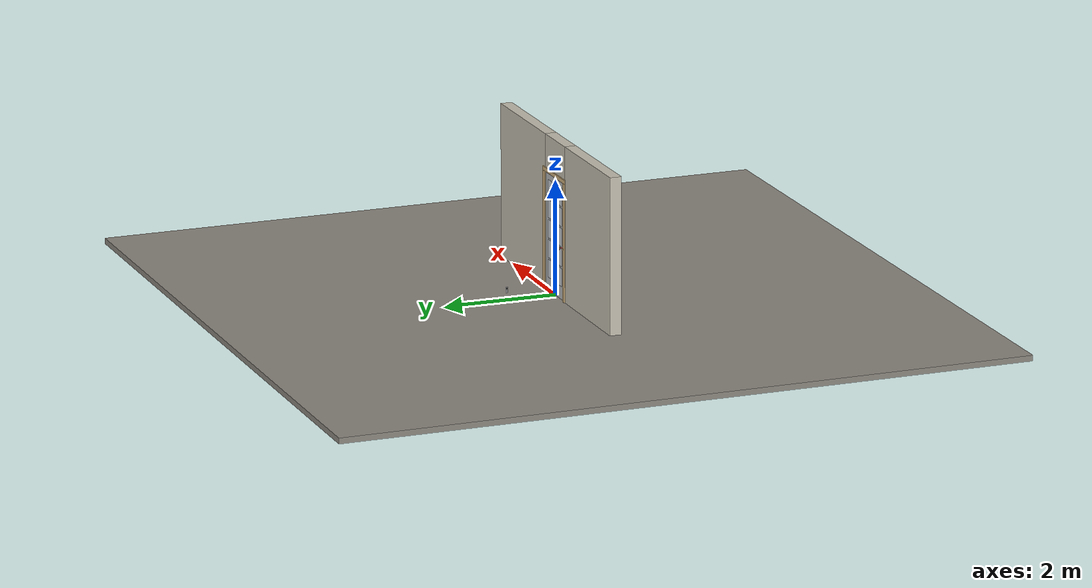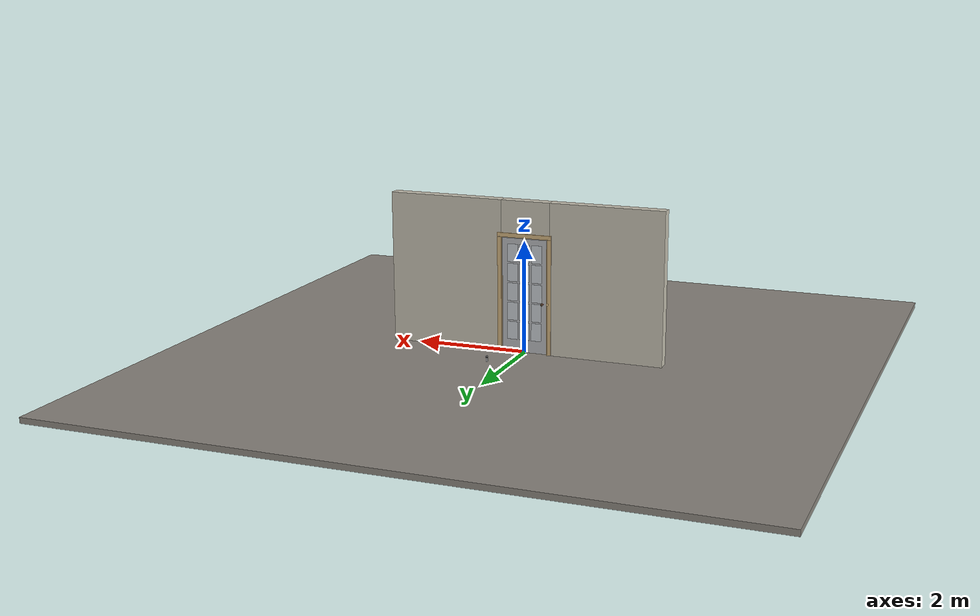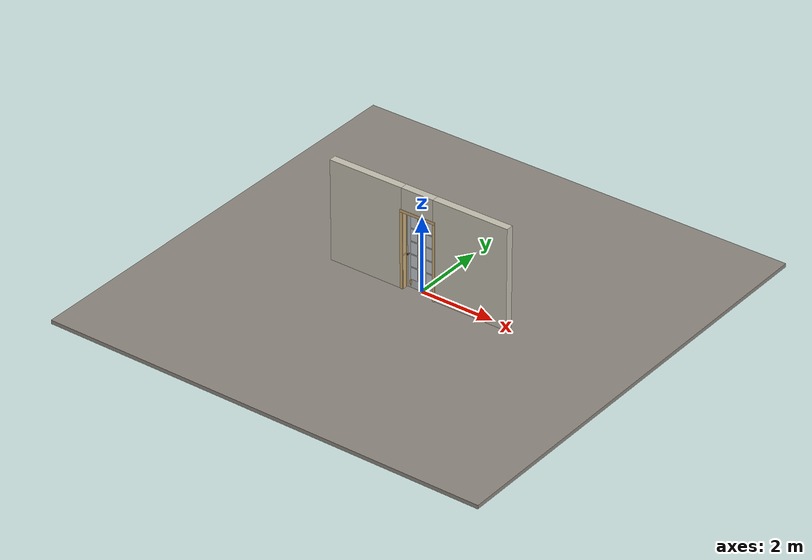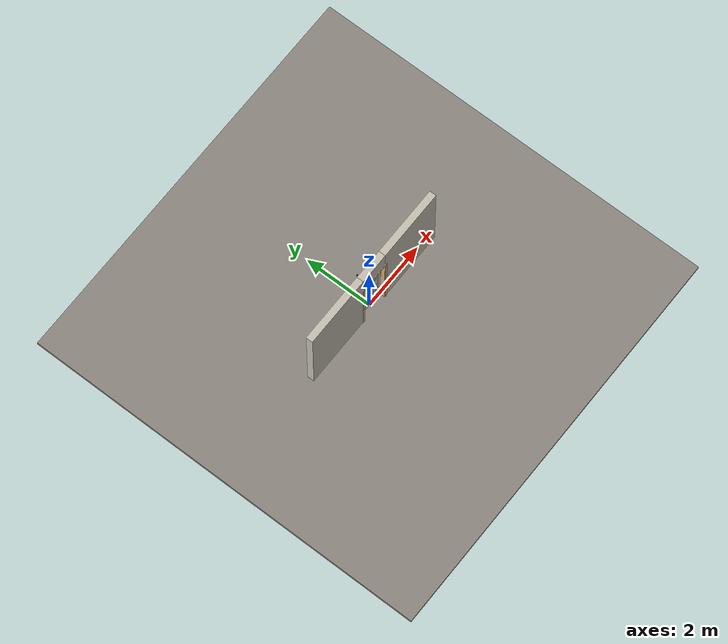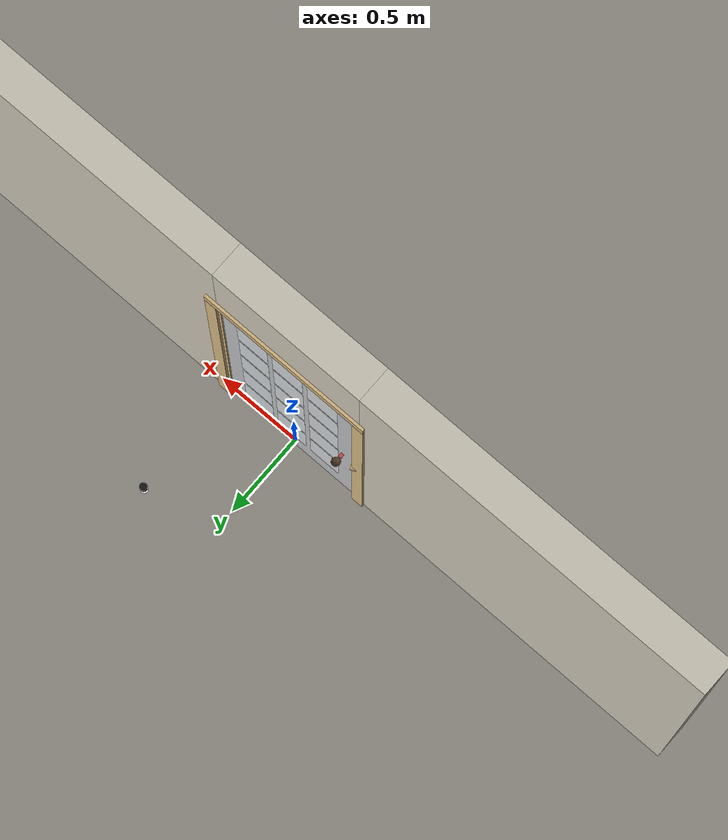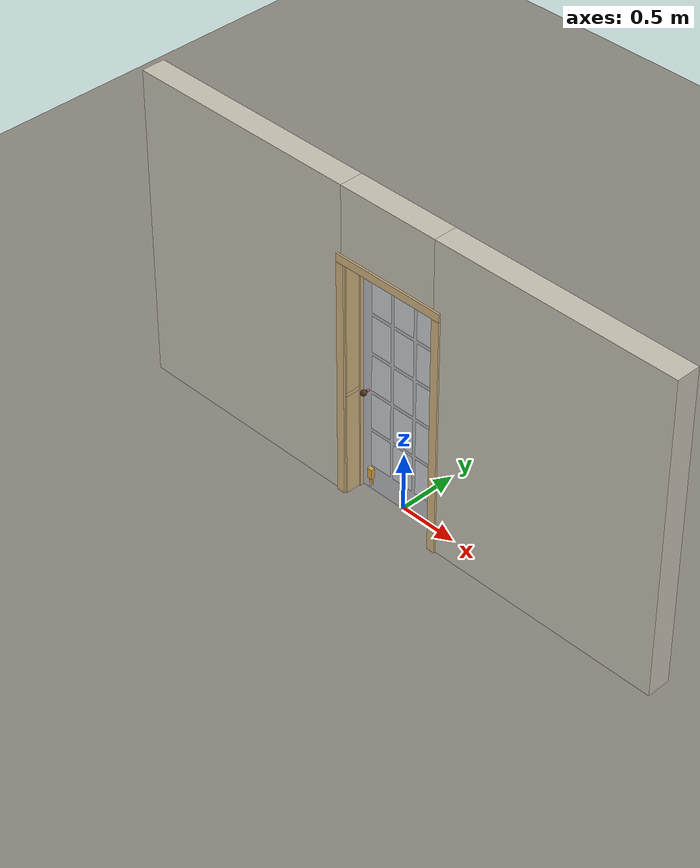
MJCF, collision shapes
<?xml version="1.0" ?>
<mujoco model="db0081_swing_single_full">
  <compiler angle="radian" meshdir="../../hardware" texturedir="../../textures" autolimits="true" inertiafromgeom="false"/>
  <option timestep="0.002" integrator="implicitfast" cone="elliptic" impratio="10" noslip_iterations="3">
    <flag multiccd="enable"/>
  </option>
  <size memory="16M"/>
  <default>
    <geom condim="4" solref="0.005 1" solimp="0.95 0.99 0.001"/>
    <joint solreflimit="0.005 1" solimplimit="0.95 0.99 0.001"/>
    <tendon solreflimit="0.005 1"/>
    <equality solref="0.002 1"/>
  </default>
  <visual>
    <headlight ambient="0.4 0.4 0.4" diffuse="0.7 0.7 0.7" specular="0.2 0.2 0.2"/>
    <quality shadowsize="4096"/>
    <map znear="0.01" zfar="60"/>
  </visual>
  <asset>
    <mesh name="hinge_96510cf394" file="hinge_96510cf394.obj"/>
    <mesh name="hinge_jamb_7fd4ca52b2" file="hinge_jamb_7fd4ca52b2.obj"/>
    <mesh name="knob_0ebdbe0e4b" file="knob_0ebdbe0e4b.obj"/>
    <material name="mat_floor" rgba="0.55 0.53 0.5 1" specular="0.2" shininess="0.15" reflectance="0"/>
    <material name="mat_wall" rgba="0.78 0.76 0.7 1" specular="0.2" shininess="0.1" reflectance="0"/>
    <material name="mat_leaf" rgba="0.72 0.73 0.74 1" specular="0.2" shininess="0.37" reflectance="0"/>
    <material name="mat_glass" rgba="0.9 0.93 0.95 0.6" specular="0.2" shininess="0.5" reflectance="0.1"/>
    <material name="mat_hinge" rgba="0.65 0.66 0.68 1" specular="0.74" shininess="0.5" reflectance="0.36"/>
    <material name="mat_op_bronze" rgba="0.3 0.22 0.15 1" specular="0.74" shininess="0.5" reflectance="0.36"/>
    <material name="mat_trim" rgba="0.85 0.66 0.3 1" specular="0.8" shininess="0.75" reflectance="0.4"/>
    <material name="mat_bolt" rgba="0.85 0.66 0.3 1" specular="0.8" shininess="0.75" reflectance="0.4"/>
    <material name="mat_frame" rgba="0.82 0.7 0.5 1" specular="0.2" shininess="0.45" reflectance="0"/>
    <material name="mat_kickdown" rgba="0.85 0.66 0.3 1" specular="0.8" shininess="0.75" reflectance="0.4"/>
    <material name="mat_kickdown_pad" rgba="0.92 0.92 0.9 1" specular="0.2" shininess="0.6" reflectance="0"/>
    <material name="mat_bumper_stop" rgba="0.08 0.08 0.08 1" specular="0.2" shininess="0.1" reflectance="0"/>
    <material name="mat_stop_base" rgba="0.9 0.9 0.92 1" specular="0.8" shininess="0.9" reflectance="0.4"/>
    <texture name="skybox" type="skybox" builtin="gradient" rgb1="0.6 0.7 0.85" rgb2="0.9 0.92 0.95" width="256" height="256"/>
  </asset>
  <worldbody>
    <light name="sun" pos="1.5 -2.5 4" dir="-0.3 0.5 -0.8" directional="true" diffuse="0.8 0.8 0.8" specular="0.3 0.3 0.3" castshadow="true"/>
    <light name="fill" pos="-1.5 2.5 3" dir="0.3 -0.5 -0.7" directional="true" diffuse="0.35 0.35 0.4" castshadow="false"/>
    <camera name="robot_view" pos="0 -2.617687 1.734312" xyaxes="1 0 0 0 0.26963 0.962964" fovy="52"/>
    <camera name="far_view" pos="0 2.466687 1.734312" xyaxes="-1 0 0 0 -0.26963 0.962964" fovy="52"/>
    <camera name="iso" pos="-1.932062 -2.210938 2.141063" xyaxes="0.741536 -0.670913 0 0.242917 0.268487 0.932151" fovy="46"/>
    <camera name="detail_handle" pos="-0.166 -0.8695 1.194" xyaxes="0.97561 0.219512 0 -0.070934 0.315262 0.94635" fovy="38"/>
    <geom name="floor" type="box" size="6 6 0.05" pos="0 0 -0.05" material="mat_floor" group="0" contype="1" conaffinity="1" friction="0.8 0.005 0.0001" density="2400"/>
    <geom name="wall_left" type="box" size="1.0205 0.1 1.35" pos="-1.4795 -0.0755 1.35" material="mat_wall" group="0" contype="1" conaffinity="1" friction="0.6 0.005 0.0001" density="800"/>
    <geom name="wall_right" type="box" size="1.0355 0.1 1.35" pos="1.4645 -0.0755 1.35" material="mat_wall" group="0" contype="1" conaffinity="1" friction="0.6 0.005 0.0001" density="800"/>
    <geom name="wall_header" type="box" size="0.444 0.1 0.303" pos="-0.015 -0.0755 2.397" material="mat_wall" group="0" contype="1" conaffinity="1" friction="0.6 0.005 0.0001" density="800"/>
    <geom name="hinge_0_jamb" type="mesh" mesh="hinge_jamb_7fd4ca52b2" pos="0.407 0.0245 0.259" quat="0 0 0 1" material="mat_hinge" group="1" contype="0" conaffinity="0" density="7850"/>
    <geom name="hinge_1_jamb" type="mesh" mesh="hinge_jamb_7fd4ca52b2" pos="0.407 0.0245 1.861" quat="0 0 0 1" material="mat_hinge" group="1" contype="0" conaffinity="0" density="7850"/>
    <geom name="jamb_hinge" type="box" size="0.0095 0.1 1.0225" pos="0.4195 -0.0755 1.0225" material="mat_frame" group="0" contype="1" conaffinity="1" friction="0.6 0.005 0.0001" density="400"/>
    <geom name="strike_914_wall_n" type="box" size="0.0245 0.083825 0.0167" pos="-0.4345 -0.091675 0.914" material="mat_frame" group="0" contype="1" conaffinity="1" friction="0.6 0.005 0.0001" density="400"/>
    <geom name="strike_914_wall_p" type="box" size="0.0245 0.008 0.0167" pos="-0.4345 0.01585 0.914" material="mat_frame" group="0" contype="1" conaffinity="1" friction="0.6 0.005 0.0001" density="400"/>
    <geom name="strike_914_ramp" type="box" size="0.0245 0.01649 0.0167" pos="-0.439136 0.028673 0.914" quat="0.977148 0 0 0.212558" material="mat_frame" group="0" contype="1" conaffinity="1" friction="0.12 0.005 0.0001" density="400"/>
    <geom name="strike_914_back" type="box" size="0.01615 0.00785 0.0167" pos="-0.44285 0 0.914" material="mat_frame" group="0" contype="1" conaffinity="1" friction="0.6 0.005 0.0001" density="400"/>
    <geom name="jamb_strike_0" type="box" size="0.0245 0.1 0.44865" pos="-0.4345 -0.0755 0.44865" material="mat_frame" group="0" contype="1" conaffinity="1" friction="0.6 0.005 0.0001" density="400"/>
    <geom name="jamb_strike_1" type="box" size="0.0245 0.1 0.55715" pos="-0.4345 -0.0755 1.48785" material="mat_frame" group="0" contype="1" conaffinity="1" friction="0.6 0.005 0.0001" density="400"/>
    <geom name="jamb_head" type="box" size="0.444 0.1 0.0095" pos="-0.015 -0.0755 2.0545" material="mat_frame" group="0" contype="1" conaffinity="1" friction="0.6 0.005 0.0001" density="400"/>
    <geom name="head_stud" type="box" size="0.444 0.1 0.015" pos="-0.015 -0.0755 2.079" material="mat_wall" group="0" contype="1" conaffinity="1" friction="0.6 0.005 0.0001" density="500"/>
    <geom name="stop_hinge" type="box" size="0.0055 0.016 1.0225" pos="0.4045 -0.034 1.0225" material="mat_frame" group="0" contype="1" conaffinity="1" friction="0.6 0.005 0.0001" density="400"/>
    <geom name="stop_strike" type="box" size="0.0055 0.016 1.0225" pos="-0.4045 -0.034 1.0225" material="mat_frame" group="0" contype="1" conaffinity="1" friction="0.6 0.005 0.0001" density="400"/>
    <geom name="stop_head" type="box" size="0.41 0.016 0.0055" pos="0 -0.034 2.0395" material="mat_frame" group="0" contype="1" conaffinity="1" friction="0.6 0.005 0.0001" density="400"/>
    <geom name="casing_l_n" type="box" size="0.035 0.008 1.032" pos="-0.459 -0.1835 1.0225" material="mat_frame" group="2" contype="0" conaffinity="0" density="400"/>
    <geom name="casing_r_n" type="box" size="0.035 0.008 1.032" pos="0.459 -0.1835 1.0225" material="mat_frame" group="2" contype="0" conaffinity="0" density="400"/>
    <geom name="casing_h_n" type="box" size="0.494 0.008 0.035" pos="0 -0.1835 2.094" material="mat_frame" group="2" contype="0" conaffinity="0" density="400"/>
    <geom name="casing_l_p" type="box" size="0.035 0.008 1.032" pos="-0.459 0.0325 1.0225" material="mat_frame" group="2" contype="0" conaffinity="0" density="400"/>
    <geom name="casing_r_p" type="box" size="0.035 0.008 1.032" pos="0.459 0.0325 1.0225" material="mat_frame" group="2" contype="0" conaffinity="0" density="400"/>
    <geom name="casing_h_p" type="box" size="0.494 0.008 0.035" pos="0 0.0325 2.094" material="mat_frame" group="2" contype="0" conaffinity="0" density="400"/>
    <geom name="door_stop_base" type="cylinder" size="0.022 0.003" pos="0.423 0.71555 0.003" material="mat_stop_base" group="0" contype="1" conaffinity="1" friction="0.6 0.005 0.0001" density="7850"/>
    <geom name="door_stop_post" type="cylinder" size="0.012 0.0245" pos="0.423 0.71555 0.0305" material="mat_stop_base" group="0" contype="1" conaffinity="1" friction="0.6 0.005 0.0001" density="7850"/>
    <geom name="door_stop_bumper" type="cylinder" size="0.022 0.02" pos="0.423 0.71555 0.075" material="mat_bumper_stop" group="0" contype="1" conaffinity="1" friction="0.6 0.005 0.0001" density="1100"/>
    <site name="approach_point" pos="0 -1.5 0" quat="1 0 0 0" size="0.05" rgba="0.2 0.9 0.2 0.5" group="4"/>
    <site name="goal_point" pos="0 1.5 0" quat="1 0 0 0" size="0.05" rgba="0.2 0.9 0.2 0.5" group="4"/>
    <site name="door_plane_center" pos="0 0 1.0225" quat="1 0 0 0" size="0.02" rgba="0.2 0.9 0.2 0.5" group="4"/>
    <body name="leaf" pos="0.41 0 0">
      <inertial pos="-0.447219 -0.004974 0.881103" mass="20.114283" quat="0.477854 0.462657 0.531004 -0.525013" diaginertia="1.202641298 8.173921607 9.3687901"/>
      <joint name="leaf_hinge" type="hinge" axis="0 0 -1" pos="-0.003 0.0245 0" limited="true" range="0 1.570796" damping="0.210326" frictionloss="0.655157" armature="0.02"/>
      <geom name="leaf_slab" type="box" size="0.4065 0.0175 1.016" pos="-0.4095 0 1.025" material="mat_leaf" group="0" contype="1" conaffinity="1" friction="0.35 0.005 0.0001" density="1"/>
      <geom name="leaf_glass_0" type="box" size="0.0955 0.0183 0.158688" pos="-0.1885 0 0.391208" material="mat_glass" group="1" contype="0" conaffinity="0" density="1"/>
      <geom name="leaf_glass_1" type="box" size="0.0955 0.0183 0.158688" pos="-0.4095 0 0.391208" material="mat_glass" group="1" contype="0" conaffinity="0" density="1"/>
      <geom name="leaf_glass_2" type="box" size="0.0955 0.0183 0.158688" pos="-0.6305 0 0.391208" material="mat_glass" group="1" contype="0" conaffinity="0" density="1"/>
      <geom name="leaf_glass_3" type="box" size="0.0955 0.0183 0.158688" pos="-0.1885 0 0.738584" material="mat_glass" group="1" contype="0" conaffinity="0" density="1"/>
      <geom name="leaf_glass_4" type="box" size="0.0955 0.0183 0.158688" pos="-0.4095 0 0.738584" material="mat_glass" group="1" contype="0" conaffinity="0" density="1"/>
      <geom name="leaf_glass_5" type="box" size="0.0955 0.0183 0.158688" pos="-0.6305 0 0.738584" material="mat_glass" group="1" contype="0" conaffinity="0" density="1"/>
      <geom name="leaf_glass_6" type="box" size="0.0955 0.0183 0.158688" pos="-0.1885 0 1.08596" material="mat_glass" group="1" contype="0" conaffinity="0" density="1"/>
      <geom name="leaf_glass_7" type="box" size="0.0955 0.0183 0.158688" pos="-0.4095 0 1.08596" material="mat_glass" group="1" contype="0" conaffinity="0" density="1"/>
      <geom name="leaf_glass_8" type="box" size="0.0955 0.0183 0.158688" pos="-0.6305 0 1.08596" material="mat_glass" group="1" contype="0" conaffinity="0" density="1"/>
      <geom name="leaf_glass_9" type="box" size="0.0955 0.0183 0.158688" pos="-0.1885 0 1.433336" material="mat_glass" group="1" contype="0" conaffinity="0" density="1"/>
      <geom name="leaf_glass_10" type="box" size="0.0955 0.0183 0.158688" pos="-0.4095 0 1.433336" material="mat_glass" group="1" contype="0" conaffinity="0" density="1"/>
      <geom name="leaf_glass_11" type="box" size="0.0955 0.0183 0.158688" pos="-0.6305 0 1.433336" material="mat_glass" group="1" contype="0" conaffinity="0" density="1"/>
      <geom name="leaf_glass_12" type="box" size="0.0955 0.0183 0.158688" pos="-0.1885 0 1.780712" material="mat_glass" group="1" contype="0" conaffinity="0" density="1"/>
      <geom name="leaf_glass_13" type="box" size="0.0955 0.0183 0.158688" pos="-0.4095 0 1.780712" material="mat_glass" group="1" contype="0" conaffinity="0" density="1"/>
      <geom name="leaf_glass_14" type="box" size="0.0955 0.0183 0.158688" pos="-0.6305 0 1.780712" material="mat_glass" group="1" contype="0" conaffinity="0" density="1"/>
      <geom name="hinge_0" type="mesh" mesh="hinge_96510cf394" pos="-0.003 0.0245 0.259" quat="0 0 0 1" material="mat_hinge" group="1" contype="0" conaffinity="0" density="7850"/>
      <geom name="hinge_1" type="mesh" mesh="hinge_96510cf394" pos="-0.003 0.0245 1.861" quat="0 0 0 1" material="mat_hinge" group="1" contype="0" conaffinity="0" density="7850"/>
      <geom name="leaf_latch_bolt_faceplate" type="box" size="0.0006 0.01235 0.0267" pos="-0.8154 0 0.914" material="mat_bolt" group="1" contype="0" conaffinity="0" density="8500"/>
      <geom name="kickdown_housing" type="box" size="0.022 0.016 0.045" pos="-0.716 -0.0335 0.169" material="mat_kickdown" group="2" contype="0" conaffinity="0" density="8500"/>
      <geom name="kickdown_arm" type="box" size="0.012 0.006 0.045" pos="-0.716 -0.0295 0.104" material="mat_kickdown" group="2" contype="0" conaffinity="0" density="8500"/>
      <geom name="kickdown_pad" type="cylinder" size="0.014 0.006" pos="-0.716 -0.0295 0.061" material="mat_kickdown_pad" group="2" contype="0" conaffinity="0" density="1200"/>
      <site name="leaf_edge_mid" pos="-0.816 0 1.016" quat="1 0 0 0" size="0.02" rgba="0.2 0.9 0.2 0.5" group="4"/>
      <body name="leaf_handle" pos="-0.756 0 0.914">
        <inertial pos="0 0 0" mass="1.21367" quat="0.5 0.5 0.5 0.5" diaginertia="0.000321148 0.004835982 0.004835982"/>
        <joint name="leaf_handle_hinge" type="hinge" axis="0 1 0" limited="true" range="0 0.87" damping="0.143674" frictionloss="0.039" stiffness="0.5" springref="-0.5" armature="0.01"/>
        <geom name="leaf_handle_spindle" type="cylinder" size="0.006 0.0255" pos="0 0 0" quat="0.707107 -0.707107 0 0" material="mat_op_bronze" group="1" contype="0" conaffinity="0" density="7850"/>
        <geom name="leaf_handle_knob_n" type="mesh" mesh="knob_0ebdbe0e4b" pos="0 -0.0175 0" quat="0 0 -0.707107 0.707107" material="mat_op_bronze" group="1" contype="0" conaffinity="0" density="3000"/>
        <geom name="leaf_handle_knob_col_n" type="sphere" size="0.0252" pos="0 -0.0695 0" material="mat_op_bronze" group="0" contype="1" conaffinity="1" friction="0.9 0.01 0.0001" density="3000"/>
        <geom name="leaf_handle_knob_neck_n" type="cylinder" size="0.011 0.012" pos="0 -0.0295 0" quat="0.707107 -0.707107 0 0" material="mat_op_bronze" group="3" contype="1" conaffinity="1" rgba="0.8 0.3 0.3 0.25" friction="0.6 0.005 0.0001" density="3000"/>
        <geom name="leaf_handle_knob_p" type="mesh" mesh="knob_0ebdbe0e4b" pos="0 0.0175 0" quat="0 0 0.707107 0.707107" material="mat_op_bronze" group="1" contype="0" conaffinity="0" density="3000"/>
        <geom name="leaf_handle_knob_col_p" type="sphere" size="0.0252" pos="0 0.0695 0" material="mat_op_bronze" group="0" contype="1" conaffinity="1" friction="0.9 0.01 0.0001" density="3000"/>
        <geom name="leaf_handle_knob_neck_p" type="cylinder" size="0.011 0.012" pos="0 0.0295 0" quat="0.707107 -0.707107 0 0" material="mat_op_bronze" group="3" contype="1" conaffinity="1" rgba="0.8 0.3 0.3 0.25" friction="0.6 0.005 0.0001" density="3000"/>
        <site name="leaf_handle_grip_n" pos="0 -0.0695 0" quat="1 0 0 0" size="0.012" rgba="0.2 0.9 0.2 0.5" group="4"/>
        <site name="leaf_handle_grip_p" pos="0 0.0695 0" quat="1 0 0 0" size="0.012" rgba="0.2 0.9 0.2 0.5" group="4"/>
      </body>
      <body name="leaf_latch_bolt" pos="-0.816 0 0.914">
        <inertial pos="0.00865 0 0" mass="0.041419" quat="0.92388 0.382683 0 0" diaginertia="0.000000798 0.000005598 0.000005598"/>
        <joint name="leaf_latch_bolt_slide" type="slide" axis="1 0 0" limited="true" range="0 0.0127" damping="2" frictionloss="0.3" stiffness="300" springref="-0.008333" armature="0.1"/>
        <geom name="leaf_latch_bolt_capsule" type="capsule" size="0.00635 0.015" pos="0.00865 0 0" quat="0.707107 0 -0.707107 0" material="mat_bolt" group="0" contype="1" conaffinity="1" friction="0.2 0.005 0.0001" density="8500"/>
      </body>
    </body>
  </worldbody>
  <tendon>
    <fixed name="leaf_latch_bolt_coupling" limited="true" range="0 10">
      <joint joint="leaf_latch_bolt_slide" coef="1"/>
      <joint joint="leaf_handle_hinge" coef="-0.015679"/>
    </fixed>
  </tendon>
  <sensor>
    <jointpos name="leaf_hinge_pos" joint="leaf_hinge"/>
    <jointvel name="leaf_hinge_vel" joint="leaf_hinge"/>
    <jointpos name="leaf_handle_hinge_pos" joint="leaf_handle_hinge"/>
    <jointvel name="leaf_handle_hinge_vel" joint="leaf_handle_hinge"/>
    <jointpos name="leaf_latch_bolt_slide_pos" joint="leaf_latch_bolt_slide"/>
    <jointvel name="leaf_latch_bolt_slide_vel" joint="leaf_latch_bolt_slide"/>
  </sensor>
</mujoco>
